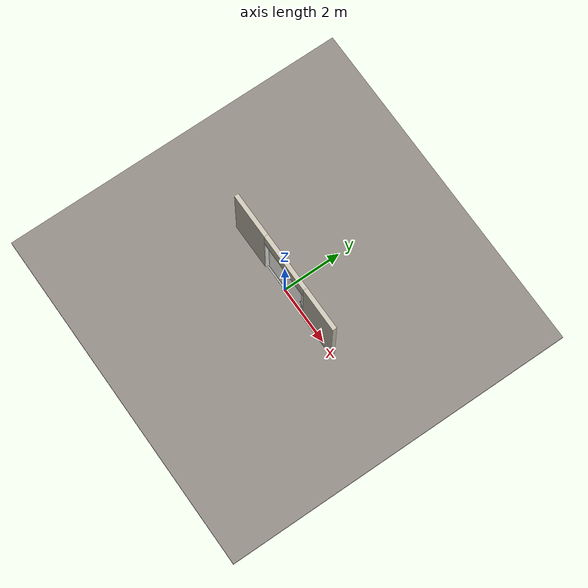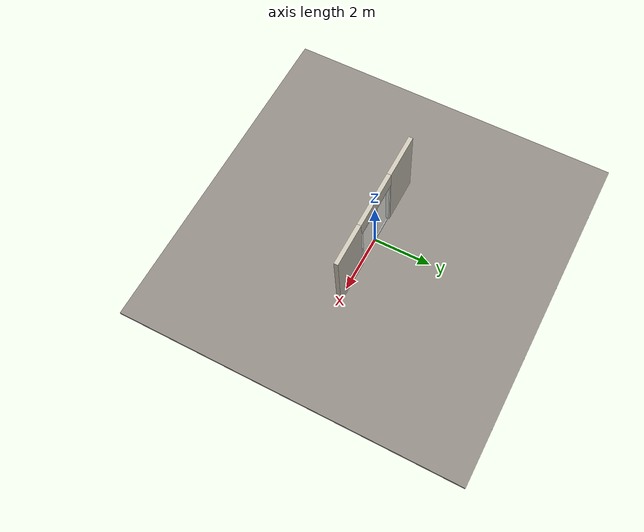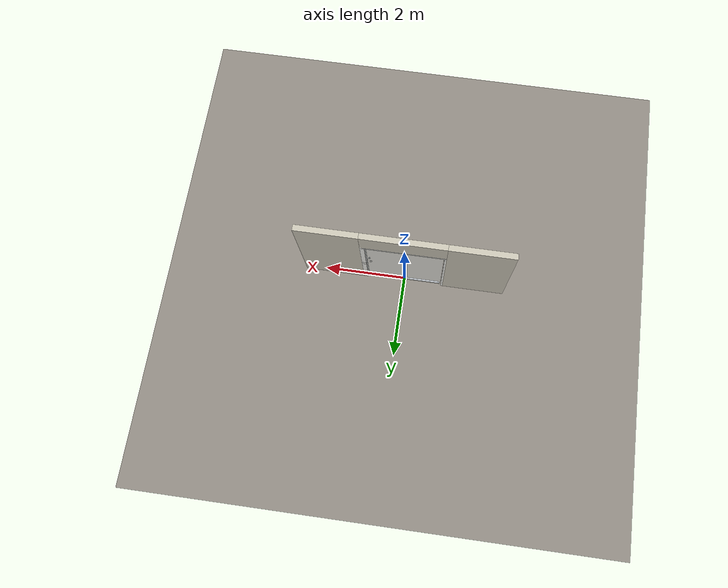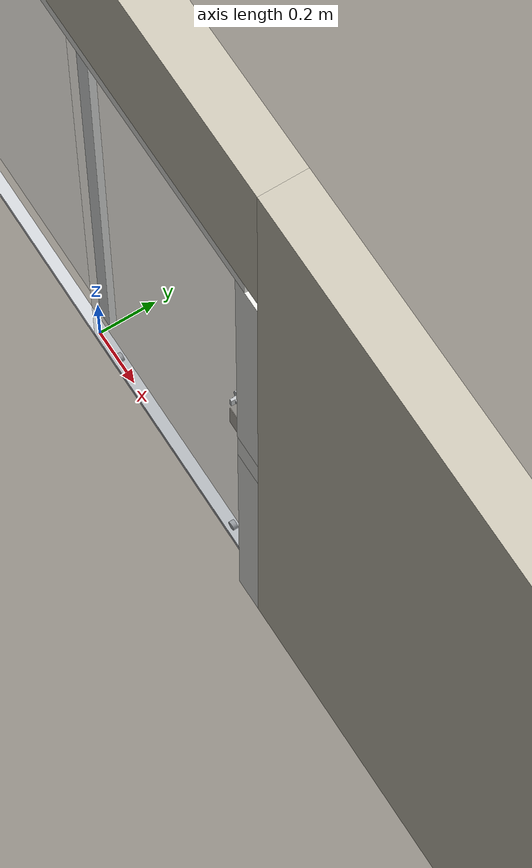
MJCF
<?xml version="1.0" ?>
<mujoco model="db0708_sliding_single_simple">
  <compiler angle="radian" meshdir="../../hardware" texturedir="../../textures" autolimits="true" inertiafromgeom="false"/>
  <option timestep="0.002" integrator="implicitfast" cone="elliptic" impratio="10" noslip_iterations="3">
    <flag multiccd="enable"/>
  </option>
  <size memory="16M"/>
  <default>
    <geom condim="4" solref="0.005 1" solimp="0.95 0.99 0.001"/>
    <joint solreflimit="0.005 1" solimplimit="0.95 0.99 0.001"/>
    <tendon solreflimit="0.005 1"/>
    <equality solref="0.002 1"/>
  </default>
  <visual>
    <headlight ambient="0.4 0.4 0.4" diffuse="0.7 0.7 0.7" specular="0.2 0.2 0.2"/>
    <quality shadowsize="4096"/>
    <map znear="0.01" zfar="60"/>
  </visual>
  <asset>
    <mesh name="thumbturn_eb5c9899a3" file="thumbturn_eb5c9899a3.obj"/>
    <material name="mat_floor" rgba="0.55 0.53 0.5 1" specular="0.2" shininess="0.15" reflectance="0"/>
    <material name="mat_wall" rgba="0.78 0.76 0.7 1" specular="0.2" shininess="0.1" reflectance="0"/>
    <material name="mat_frame" rgba="0.92 0.92 0.9 1" specular="0.2" shininess="0.6" reflectance="0"/>
    <material name="mat_track" rgba="0.8 0.81 0.83 1" specular="0.8" shininess="0.6" reflectance="0.4"/>
    <material name="mat_fixed_glass" rgba="0.85 0.92 0.95 0.25" specular="0.2" shininess="0.95" reflectance="0.1"/>
    <material name="mat_leaf" rgba="0.85 0.92 0.95 0.25" specular="0.2" shininess="0.95" reflectance="0.1"/>
    <material name="mat_glass_leaf" rgba="0.85 0.92 0.95 0.25" specular="0.2" shininess="0.95" reflectance="0.1"/>
    <material name="mat_patch" rgba="0.75 0.76 0.77 1" specular="0.8" shininess="0.65" reflectance="0.4"/>
    <material name="mat_roller" rgba="0.65 0.66 0.68 1" specular="0.74" shininess="0.5" reflectance="0.36"/>
    <material name="mat_op_nickel_satin" rgba="0.72 0.7 0.66 1" specular="0.8" shininess="0.65" reflectance="0.4"/>
    <material name="mat_hook" rgba="0.75 0.76 0.77 1" specular="0.8" shininess="0.65" reflectance="0.4"/>
    <texture name="skybox" type="skybox" builtin="gradient" rgb1="0.6 0.7 0.85" rgb2="0.9 0.92 0.95" width="256" height="256"/>
  </asset>
  <worldbody>
    <light name="sun" pos="1.5 -2.5 4" dir="-0.3 0.5 -0.8" directional="true" diffuse="0.8 0.8 0.8" specular="0.3 0.3 0.3" castshadow="true"/>
    <light name="fill" pos="-1.5 2.5 3" dir="0.3 -0.5 -0.7" directional="true" diffuse="0.35 0.35 0.4" castshadow="false"/>
    <camera name="robot_view" pos="0 -2.572188 1.758712" xyaxes="1 0 0 0 0.26963 0.962964" fovy="52"/>
    <camera name="far_view" pos="0 2.572188 1.758712" xyaxes="-1 0 0 0 -0.26963 0.962964" fovy="52"/>
    <camera name="iso" pos="1.954862 -2.160637 2.170262" xyaxes="0.741536 0.670913 0 -0.242917 0.268487 0.932151" fovy="46"/>
    <camera name="detail_handle" pos="1.009 -0.8225 1.23" xyaxes="0.97561 0.219512 0 -0.070934 0.315262 0.94635" fovy="38"/>
    <geom name="floor" type="box" size="6 6 0.05" pos="0 0 -0.05" material="mat_floor" group="0" contype="1" conaffinity="1" friction="0.8 0.005 0.0001" density="2400"/>
    <geom name="wall_left" type="box" size="0.7655 0.0725 1.35" pos="-1.7345 0 1.35" material="mat_wall" group="0" contype="1" conaffinity="1" friction="0.6 0.005 0.0001" density="800"/>
    <geom name="wall_right" type="box" size="0.7355 0.0725 1.35" pos="1.7645 0 1.35" material="mat_wall" group="0" contype="1" conaffinity="1" friction="0.6 0.005 0.0001" density="800"/>
    <geom name="wall_header" type="box" size="0.999 0.0725 0.289" pos="0.03 0 2.411" material="mat_wall" group="0" contype="1" conaffinity="1" friction="0.6 0.005 0.0001" density="800"/>
    <geom name="jamb_l" type="box" size="0.0225 0.0725 1.0385" pos="-0.9465 0 1.0385" material="mat_frame" group="0" contype="1" conaffinity="1" friction="0.6 0.005 0.0001" density="300"/>
    <geom name="jamb_head" type="box" size="0.969 0.0725 0.0225" pos="0 0 2.0995" material="mat_frame" group="0" contype="1" conaffinity="1" friction="0.6 0.005 0.0001" density="300"/>
    <geom name="fixed_panel_glass" type="box" size="0.442 0.003 0.9885" pos="-0.462 0.04 1.0385" material="mat_fixed_glass" group="0" contype="1" conaffinity="1" friction="0.6 0.005 0.0001" density="2500"/>
    <geom name="fixed_panel_stile" type="box" size="0.03 0.012 1.0385" pos="-0.03 0.0475 1.0385" material="mat_frame" group="0" contype="1" conaffinity="1" friction="0.6 0.005 0.0001" density="1400"/>
    <geom name="bottom_rail" type="box" size="0.9275 0.02 0.012" pos="0.0415 0 0.012" material="mat_track" group="0" contype="1" conaffinity="1" friction="0.6 0.005 0.0001" density="2700"/>
    <geom name="leaf_hook_keeper" type="box" size="0.008 0.015 0.006" pos="0.937 0 1.03" material="mat_hook" group="0" contype="1" conaffinity="1" friction="0.6 0.005 0.0001" density="7900"/>
    <geom name="jamb_latch_pwall_1030_n" type="box" size="0.0525 0.022 0.06" pos="0.9765 -0.0505 1.03" material="mat_frame" group="0" contype="1" conaffinity="1" friction="0.6 0.005 0.0001" density="300"/>
    <geom name="jamb_latch_pwall_1030_p" type="box" size="0.0525 0.022 0.06" pos="0.9765 0.0505 1.03" material="mat_frame" group="0" contype="1" conaffinity="1" friction="0.6 0.005 0.0001" density="300"/>
    <geom name="jamb_latch_pback_1030" type="box" size="0.004 0.0285 0.06" pos="1.025 0 1.03" material="mat_frame" group="0" contype="1" conaffinity="1" friction="0.6 0.005 0.0001" density="300"/>
    <geom name="jamb_latch_0" type="box" size="0.0525 0.0725 0.485" pos="0.9765 0 0.485" material="mat_frame" group="0" contype="1" conaffinity="1" friction="0.6 0.005 0.0001" density="300"/>
    <geom name="jamb_latch_1" type="box" size="0.0525 0.0725 0.4935" pos="0.9765 0 1.5835" material="mat_frame" group="0" contype="1" conaffinity="1" friction="0.6 0.005 0.0001" density="300"/>
    <geom name="leaf_hook_keeper_plate_b" type="box" size="0.0345 0.003 0.0005" pos="0.9235 0 0.967" quat="-0.5 -0.5 0.5 0.5" material="mat_hook" group="1" contype="0" conaffinity="0" density="7800"/>
    <geom name="leaf_hook_keeper_plate_l" type="box" size="0.003 0.06 0.0005" pos="0.9235 0.0315 1.03" quat="-0.5 -0.5 0.5 0.5" material="mat_hook" group="1" contype="0" conaffinity="0" density="7800"/>
    <geom name="leaf_hook_keeper_plate_t" type="box" size="0.0345 0.003 0.0005" pos="0.9235 0 1.093" quat="-0.5 -0.5 0.5 0.5" material="mat_hook" group="1" contype="0" conaffinity="0" density="7800"/>
    <geom name="leaf_hook_keeper_plate_r" type="box" size="0.003 0.06 0.0005" pos="0.9235 -0.0315 1.03" quat="-0.5 -0.5 0.5 0.5" material="mat_hook" group="1" contype="0" conaffinity="0" density="7800"/>
    <geom name="leaf_hook_keeper_bracket" type="box" size="0.0064 0.00725 0.005" pos="0.937 0.02175 1.03" material="mat_hook" group="1" contype="0" conaffinity="0" density="7850"/>
    <site name="approach_point" pos="0 -1.5 0" quat="1 0 0 0" size="0.05" rgba="0.2 0.9 0.2 0.5" group="4"/>
    <site name="goal_point" pos="0 1.5 0" quat="1 0 0 0" size="0.05" rgba="0.2 0.9 0.2 0.5" group="4"/>
    <site name="door_plane_center" pos="0 0 1.0385" quat="1 0 0 0" size="0.02" rgba="0.2 0.9 0.2 0.5" group="4"/>
    <body name="leaf" pos="0.462 0 0">
      <inertial pos="0.000107 -0.000002 1.043514" mass="130.092928" quat="0.500028 -0.500032 -0.499968 -0.499972" diaginertia="9.095791453 44.983799233 54.035780789"/>
      <joint name="leaf_slide" type="slide" axis="-1 0 0" limited="true" range="0 0.841" damping="8.517196" frictionloss="153.388467" armature="0.5"/>
      <geom name="leaf_glass" type="box" size="0.457 0.0225 1.016" pos="0 0 1.046" material="mat_glass_leaf" group="0" contype="1" conaffinity="1" friction="0.4 0.005 0.0001" density="1"/>
      <geom name="leaf_roller_0" type="cylinder" size="0.015 0.008" pos="-0.342 0 0.039" quat="0.707107 -0.707107 0 0" material="mat_roller" group="1" contype="0" conaffinity="0" density="7850"/>
      <geom name="leaf_roller_1" type="cylinder" size="0.015 0.008" pos="0.312 0 0.039" quat="0.707107 -0.707107 0 0" material="mat_roller" group="1" contype="0" conaffinity="0" density="7850"/>
      <geom name="leaf_pull_n" type="box" size="0.025 0.0005 0.05" pos="0.367 -0.023 0.95" material="mat_op_nickel_satin" group="1" contype="0" conaffinity="0" density="1000"/>
      <geom name="leaf_hook_faceplate" type="box" size="0.0006 0.011 0.045" pos="0.4564 0 1.03" material="mat_hook" group="1" contype="0" conaffinity="0" density="7900"/>
      <site name="leaf_pull_grip_n" pos="0.367 -0.0225 0.95" quat="1 0 0 0" size="0.012" rgba="0.2 0.9 0.2 0.5" group="4"/>
      <site name="leaf_edge_mid" pos="0.457 0 1.046" quat="1 0 0 0" size="0.02" rgba="0.2 0.9 0.2 0.5" group="4"/>
      <body name="leaf_hook_thumbturn" pos="0.397 -0.0225 1.17">
        <inertial pos="0 -0.012928 0" mass="0.178946" quat="0.5 0.5 0.5 0.5" diaginertia="0.000026045 0.000026215 0.000032438"/>
        <joint name="leaf_hook_thumbturn_hinge" type="hinge" axis="0 1 0" limited="true" range="0 0.05" damping="0.05" frictionloss="0.25" armature="0.005"/>
        <geom name="leaf_hook_tt_mesh" type="mesh" mesh="thumbturn_eb5c9899a3" pos="0 0 0" quat="0.707107 0.707107 0 0" material="mat_hook" group="0" contype="1" conaffinity="1" friction="0.6 0.005 0.0001" density="7100"/>
        <geom name="leaf_hook_tt_col" type="box" size="0.006 0.012 0.016" pos="0 -0.02 0" material="mat_hook" group="3" contype="1" conaffinity="1" rgba="0.8 0.3 0.3 0.25" friction="0.6 0.005 0.0001" density="7100"/>
        <site name="leaf_hook_tt_grip" pos="0 -0.03 0" quat="1 0 0 0" size="0.01" rgba="0.2 0.9 0.2 0.5" group="4"/>
      </body>
      <body name="leaf_hook" pos="0.457 0 1.03">
        <inertial pos="0.026737 0 -0.009263" mass="0.072048" quat="0.200817 -0.200817 0.677991 0.677991" diaginertia="0.000005266 0.00001511 0.000019175"/>
        <joint name="leaf_hook_hinge" type="hinge" axis="0 1 0" limited="true" range="0 1" damping="0.05" frictionloss="0.1" armature="0.005"/>
        <geom name="leaf_hook_arm" type="box" size="0.022 0.005 0.006" pos="0.02 0 -0.016" material="mat_hook" group="0" contype="1" conaffinity="1" friction="0.6 0.005 0.0001" density="7900"/>
        <geom name="leaf_hook_tip" type="box" size="0.006 0.005 0.016" pos="0.036 0 0" material="mat_hook" group="0" contype="1" conaffinity="1" friction="0.6 0.005 0.0001" density="7900"/>
      </body>
    </body>
  </worldbody>
  <equality>
    <joint name="leaf_hook_couple" joint1="leaf_hook_hinge" joint2="leaf_hook_thumbturn_hinge" polycoef="0 1 0 0 0" active="true"/>
  </equality>
  <sensor>
    <jointpos name="leaf_slide_pos" joint="leaf_slide"/>
    <jointvel name="leaf_slide_vel" joint="leaf_slide"/>
    <jointpos name="leaf_hook_thumbturn_hinge_pos" joint="leaf_hook_thumbturn_hinge"/>
    <jointvel name="leaf_hook_thumbturn_hinge_vel" joint="leaf_hook_thumbturn_hinge"/>
    <jointpos name="leaf_hook_hinge_pos" joint="leaf_hook_hinge"/>
    <jointvel name="leaf_hook_hinge_vel" joint="leaf_hook_hinge"/>
  </sensor>
</mujoco>
